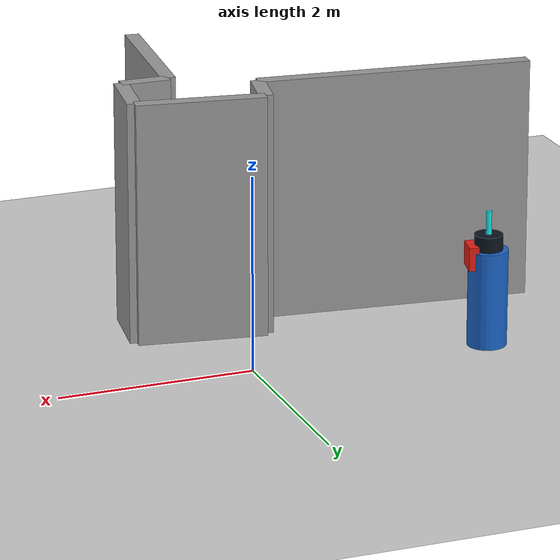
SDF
<sdf version="1.7">
 <world name="default">
  <plugin name="socnav_plugin" filename="libSocNavPlugin.so">
   <robot_name>robot</robot_name>
   <trajectory_file>/home/hunav_gz_classic_ws/SocNav3_trajectories/src3/000001060.json</trajectory_file>
   <human_slots>2</human_slots>
  </plugin>
  <light name="sun" type="directional">
   <pose>0 0 10 0 -0 0</pose>
   <diffuse>0.8 0.8 0.8 1</diffuse>
   <specular>0.2 0.2 0.2 1</specular>
   <attenuation>
    <range>1000</range>
    <constant>0.9</constant>
    <linear>0.01</linear>
    <quadratic>0.001</quadratic>
   </attenuation>
   <direction>-0.5 0.1 -0.9</direction>
   <spot><inner_angle>0</inner_angle><outer_angle>0</outer_angle><falloff>0</falloff></spot>
  </light>
  <model name="ground_plane">
   <static>1</static>
   <link name="link">
    <collision name="collision">
     <geometry><plane><normal>0 0 1</normal><size>100 100</size></plane></geometry>
     <surface><friction><ode><mu>100</mu><mu2>50</mu2></ode></friction></surface>
    </collision>
    <visual name="visual">
     <cast_shadows>0</cast_shadows>
     <geometry><plane><normal>0 0 1</normal><size>100 100</size></plane></geometry>
     <material>
      <script><uri>file://media/materials/scripts/kitchen.material</uri><name>Kitchen/CounterTop_H</name></script>
     </material>
    </visual>
   </link>
  </model>
  <gravity>0 0 -9.8</gravity>
  <magnetic_field>6e-06 2.3e-05 -4.2e-05</magnetic_field>
  <atmosphere type="adiabatic"/>
  <physics type="ode">
   <max_step_size>0.001</max_step_size>
   <real_time_factor>1</real_time_factor>
   <real_time_update_rate>1000</real_time_update_rate>
  </physics>
  <scene><ambient>0.4 0.4 0.4 1</ambient><background>0.7 0.7 0.7 1</background><shadows>1</shadows></scene>
  <audio><device>default</device></audio>
  <spherical_coordinates>
   <surface_model>EARTH_WGS84</surface_model>
   <latitude_deg>0</latitude_deg>
   <longitude_deg>0</longitude_deg>
   <elevation>0</elevation>
   <heading_deg>0</heading_deg>
  </spherical_coordinates>
  <model name="robot">
   <pose>-2.4362341429998158 0.13918297104262545 0.5 0 0 -0.20917694983184337</pose>
   <link name="link">
    <collision name="collision">
     <geometry><cylinder><radius>0.2</radius><length>1.0</length></cylinder></geometry>
    </collision>
    <visual name="visual">
     <geometry><cylinder><radius>0.2</radius><length>1.0</length></cylinder></geometry>
     <material><ambient>0.1 0.4 0.8 1</ambient><diffuse>0.1 0.4 0.8 1</diffuse></material>
    </visual>
    <visual name="robot_top">
     <pose>0 0 0.58 0 0 0</pose>
     <geometry><cylinder><radius>0.144</radius><length>0.16</length></cylinder></geometry>
     <material><ambient>0.04 0.08 0.12 1</ambient><diffuse>0.04 0.08 0.12 1</diffuse></material>
    </visual>
    <visual name="robot_front">
     <pose>0.168 0 0.44 0 0 0</pose>
     <geometry><box><size>0.096 0.256 0.24</size></box></geometry>
     <material><ambient>0.9 0.12 0.08 1</ambient><diffuse>0.9 0.12 0.08 1</diffuse></material>
    </visual>
    <visual name="robot_sensor">
     <pose>0 0 0.78 0 0 0</pose>
     <geometry><cylinder><radius>0.028000000000000004</radius><length>0.24</length></cylinder></geometry>
     <material><ambient>0.1 0.9 0.9 1</ambient><diffuse>0.1 0.9 0.9 1</diffuse></material>
    </visual>
   </link>
  </model>
  <model name="simple_world_test">
   <link name="Wall_0">
    <collision name="Wall_0_Collision">
     <geometry><box><size>2.8332749959333148 0.15 2.5</size></box></geometry>
     <pose>0 0 1.25 0 -0 0</pose>
    </collision>
    <visual name="Wall_0_Visual">
     <pose>0 0 1.25 0 -0 0</pose>
     <geometry><box><size>2.8332749959333148 0.15 2.5</size></box></geometry>
     <material>
      <script><uri>file://media/materials/scripts/gazebo.material</uri><name>Gazebo/Grey</name></script>
      <ambient>1 1 1 1</ambient>
     </material>
     <meta><layer>0</layer></meta>
    </visual>
    <pose>-2.0026597222808906 -1.2800292370038622 0 0 -0 -0.10409993810959933</pose>
   </link>
   <link name="Wall_1">
    <collision name="Wall_1_Collision">
     <geometry><box><size>0.5099019513592785 0.15 2.5</size></box></geometry>
     <pose>0 0 1.25 0 -0 0</pose>
    </collision>
    <visual name="Wall_1_Visual">
     <pose>0 0 1.25 0 -0 0</pose>
     <geometry><box><size>0.5099019513592785 0.15 2.5</size></box></geometry>
     <material>
      <script><uri>file://media/materials/scripts/gazebo.material</uri><name>Gazebo/Grey</name></script>
      <ambient>1 1 1 1</ambient>
     </material>
     <meta><layer>0</layer></meta>
    </visual>
    <pose>-0.5436912015392739 -1.1772349033500014 0 0 -0 1.3734007669450157</pose>
   </link>
   <link name="Wall_2">
    <collision name="Wall_2_Collision">
     <geometry><box><size>1.3152946437965904 0.15 2.5</size></box></geometry>
     <pose>0 0 1.25 0 -0 0</pose>
    </collision>
    <visual name="Wall_2_Visual">
     <pose>0 0 1.25 0 -0 0</pose>
     <geometry><box><size>1.3152946437965904 0.15 2.5</size></box></geometry>
     <material>
      <script><uri>file://media/materials/scripts/gazebo.material</uri><name>Gazebo/Grey</name></script>
      <ambient>1 1 1 1</ambient>
     </material>
     <meta><layer>0</layer></meta>
    </visual>
    <pose>0.1563087984607261 -1.0272349033500014 0 0 -0 -0.15264932839526532</pose>
   </link>
   <link name="Wall_3">
    <collision name="Wall_3_Collision">
     <geometry><box><size>0.7071067811865472 0.15 2.5</size></box></geometry>
     <pose>0 0 1.25 0 -0 0</pose>
    </collision>
    <visual name="Wall_3_Visual">
     <pose>0 0 1.25 0 -0 0</pose>
     <geometry><box><size>0.7071067811865472 0.15 2.5</size></box></geometry>
     <material>
      <script><uri>file://media/materials/scripts/gazebo.material</uri><name>Gazebo/Grey</name></script>
      <ambient>1 1 1 1</ambient>
     </material>
     <meta><layer>0</layer></meta>
    </visual>
    <pose>0.7563087984607262 -1.4772349033500014 0 0 -0 -1.7126933813990601</pose>
   </link>
   <link name="Wall_4">
    <collision name="Wall_4_Collision">
     <geometry><box><size>0.5 0.15 2.5</size></box></geometry>
     <pose>0 0 1.25 0 -0 0</pose>
    </collision>
    <visual name="Wall_4_Visual">
     <pose>0 0 1.25 0 -0 0</pose>
     <geometry><box><size>0.5 0.15 2.5</size></box></geometry>
     <material>
      <script><uri>file://media/materials/scripts/gazebo.material</uri><name>Gazebo/Grey</name></script>
      <ambient>1 1 1 1</ambient>
     </material>
     <meta><layer>0</layer></meta>
    </visual>
    <pose>0.45630879846072636 -1.8272349033500013 0 0 -0 3.141592653589793</pose>
   </link>
   <link name="Wall_5">
    <collision name="Wall_5_Collision">
     <geometry><box><size>1.5922955998641033 0.15 2.5</size></box></geometry>
     <pose>0 0 1.25 0 -0 0</pose>
    </collision>
    <visual name="Wall_5_Visual">
     <pose>0 0 1.25 0 -0 0</pose>
     <geometry><box><size>1.5922955998641033 0.15 2.5</size></box></geometry>
     <material>
      <script><uri>file://media/materials/scripts/gazebo.material</uri><name>Gazebo/Grey</name></script>
      <ambient>1 1 1 1</ambient>
     </material>
     <meta><layer>0</layer></meta>
    </visual>
    <pose>0.127089131477101 -2.6194315731862545 0 0 -0 -1.6704649792860586</pose>
   </link>
   <static>1</static>
  </model>
 </world>
</sdf>
